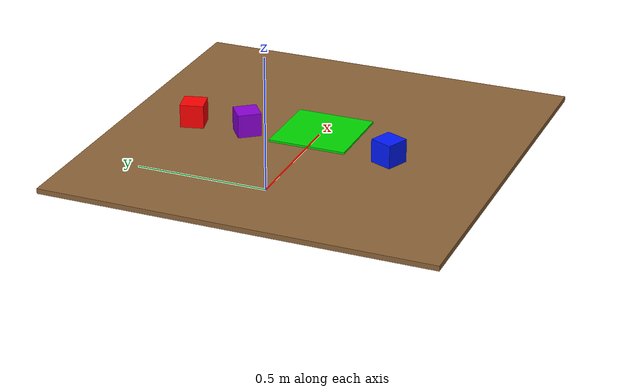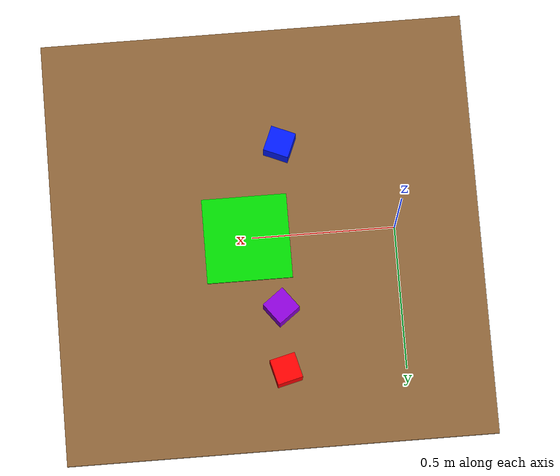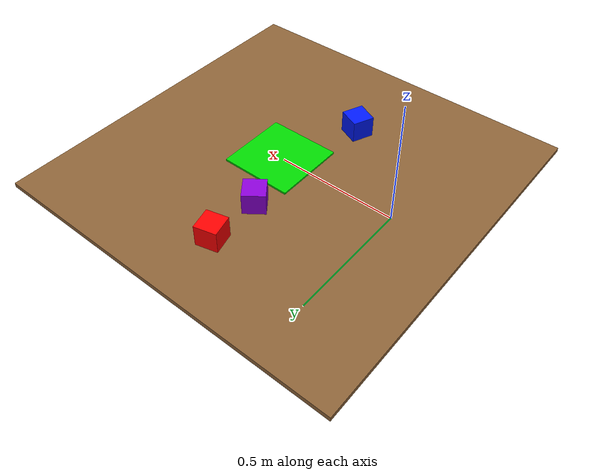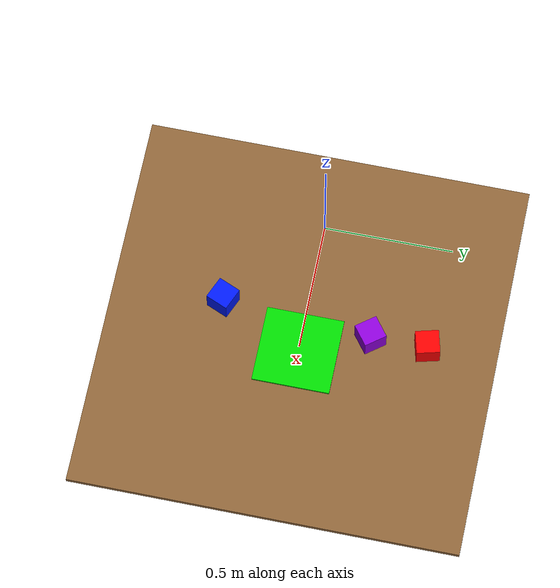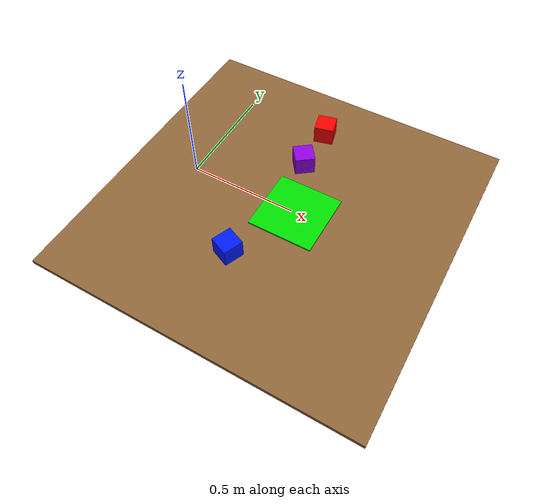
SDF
<?xml version="1.0"?>

<sdf version="1.7">
  <world name="default">

    <!-- Basic Gazebo systems                                      -->

    <plugin filename="ignition-gazebo-physics-system"
            name="ignition::gazebo::systems::Physics">
    </plugin>

    <plugin filename="ignition-gazebo-user-commands-system"
            name="ignition::gazebo::systems::UserCommands">
    </plugin>

    <plugin filename="ignition-gazebo-scene-broadcaster-system"
            name="ignition::gazebo::systems::SceneBroadcaster">
    </plugin>

    <plugin filename="ignition-gazebo-sensors-system"
            name="ignition::gazebo::systems::Sensors">
      <render_engine>ogre2</render_engine>
    </plugin>

    <plugin filename="gz-sim-imu-system"
            name="gz::sim::systems::Imu">
    </plugin>

    <gravity>0.0 0.0 -9.8</gravity>

    <!-- Lighting                                                  -->

    <include>
      <uri>
        https://fuel.gazebosim.org/1.0/OpenRobotics/models/Sun
      </uri>
    </include>

    <!-- Opaque brown floor                                        -->
    <!-- Smaller than before, shifted forward                       -->

    <model name="dirt_floor">
      <static>true</static>

      <!--
        Floor size = 1.50 x 1.50 m
        Original was 3.00 x 3.00 m, so area is 1/4.
        Shifted forward in +X direction so less area is behind robot.
      -->
      <pose>0.45 0.00 -0.010 0 0 0</pose>

      <link name="link">

        <collision name="collision">
          <geometry>
            <box>
              <size>1.50 1.50 0.020</size>
            </box>
          </geometry>

          <surface>
            <friction>
              <ode>
                <mu>2.5</mu>
                <mu2>2.5</mu2>
              </ode>
            </friction>
          </surface>
        </collision>

        <visual name="visual">
          <geometry>
            <box>
              <size>1.50 1.50 0.020</size>
            </box>
          </geometry>

          <!-- Opaque dirt / soil color -->
          <material>
            <ambient>0.48 0.34 0.18 1.0</ambient>
            <diffuse>0.55 0.39 0.22 1.0</diffuse>
            <specular>0.08 0.06 0.04 1.0</specular>
          </material>
        </visual>

      </link>
    </model>

    <!-- Green stacking / placing area                             -->
    <!-- Moved farther by one area side length                      -->

    <model name="stacking_area">
      <static>true</static>

      <!--
        Previous center was around x = 0.42.
        Area side length = 0.30.
        New x = 0.72.
      -->
      <pose>0.52 0.00 0.006 0 0 0</pose>

      <link name="link">
        <visual name="visual">
          <geometry>
            <box>
              <size>0.30 0.30 0.008</size>
            </box>
          </geometry>

          <!-- Opaque green placing area -->
          <material>
            <ambient>0.0 0.65 0.0 1.0</ambient>
            <diffuse>0.0 0.85 0.0 1.0</diffuse>
            <specular>0.1 0.1 0.1 1.0</specular>
          </material>
        </visual>
      </link>
    </model>

    <!-- Red block                                                 -->
    <!-- Bigger block, dispersed position                          -->

    <model name="red_block">
      <static>false</static>

      <!-- block size = 0.09 m, so center z = 0.045 -->
      <pose>0.42 0.48 0.045 0 0 0.25</pose>

      <link name="link">

        <inertial>
          <mass>0.18</mass>
          <inertia>
            <ixx>0.000243</ixx>
            <iyy>0.000243</iyy>
            <izz>0.000243</izz>
            <ixy>0.0</ixy>
            <ixz>0.0</ixz>
            <iyz>0.0</iyz>
          </inertia>
        </inertial>

        <collision name="collision">
          <geometry>
            <box>
              <size>0.09 0.09 0.09</size>
            </box>
          </geometry>

          <surface>
            <friction>
              <ode>
                <mu>3.0</mu>
                <mu2>3.0</mu2>
              </ode>
            </friction>
          </surface>
        </collision>

        <visual name="visual">
          <geometry>
            <box>
              <size>0.09 0.09 0.09</size>
            </box>
          </geometry>

          <material>
            <ambient>1.0 0.0 0.0 1.0</ambient>
            <diffuse>1.0 0.0 0.0 1.0</diffuse>
            <specular>0.2 0.2 0.2 1.0</specular>
          </material>
        </visual>

      </link>
    </model>

    <!-- Blue block                                                -->
    <!-- Bigger block, dispersed position                          -->

    <model name="blue_block">
      <static>false</static>

      <pose>0.38 -0.32 0.045 0 0 -0.40</pose>

      <link name="link">

        <inertial>
          <mass>0.18</mass>
          <inertia>
            <ixx>0.000243</ixx>
            <iyy>0.000243</iyy>
            <izz>0.000243</izz>
            <ixy>0.0</ixy>
            <ixz>0.0</ixz>
            <iyz>0.0</iyz>
          </inertia>
        </inertial>

        <collision name="collision">
          <geometry>
            <box>
              <size>0.09 0.09 0.09</size>
            </box>
          </geometry>

          <surface>
            <friction>
              <ode>
                <mu>3.0</mu>
                <mu2>3.0</mu2>
              </ode>
            </friction>
          </surface>
        </collision>

        <visual name="visual">
          <geometry>
            <box>
              <size>0.09 0.09 0.09</size>
            </box>
          </geometry>

          <material>
            <ambient>0.0 0.1 1.0 1.0</ambient>
            <diffuse>0.0 0.1 1.0 1.0</diffuse>
            <specular>0.2 0.2 0.2 1.0</specular>
          </material>
        </visual>

      </link>
    </model>

    <!-- Purple block                                              -->
    <!-- Bigger block, dispersed position                          -->

    <model name="purple_block">
      <static>false</static>

      <pose>0.42 0.26 0.045 0 0 0.65</pose>

      <link name="link">

        <inertial>
          <mass>0.18</mass>
          <inertia>
            <ixx>0.000243</ixx>
            <iyy>0.000243</iyy>
            <izz>0.000243</izz>
            <ixy>0.0</ixy>
            <ixz>0.0</ixz>
            <iyz>0.0</iyz>
          </inertia>
        </inertial>

        <collision name="collision">
          <geometry>
            <box>
              <size>0.09 0.09 0.09</size>
            </box>
          </geometry>

          <surface>
            <friction>
              <ode>
                <mu>3.0</mu>
                <mu2>3.0</mu2>
              </ode>
            </friction>
          </surface>
        </collision>

        <visual name="visual">
          <geometry>
            <box>
              <size>0.09 0.09 0.09</size>
            </box>
          </geometry>

          <material>
            <ambient>0.55 0.0 0.85 1.0</ambient>
            <diffuse>0.55 0.0 0.85 1.0</diffuse>
            <specular>0.2 0.2 0.2 1.0</specular>
          </material>
        </visual>

      </link>
    </model>

    <!-- Scene properties                                          -->

    <scene>
      <shadows>false</shadows>
      <ambient>0.65 0.65 0.65 1.0</ambient>
      <background>0.78 0.78 0.78 1.0</background>
    </scene>

  </world>
</sdf>
